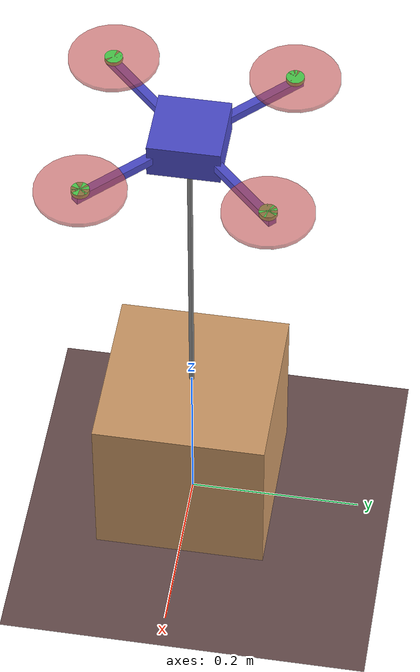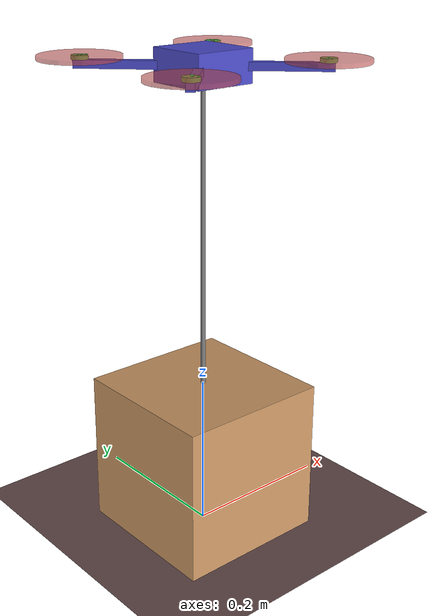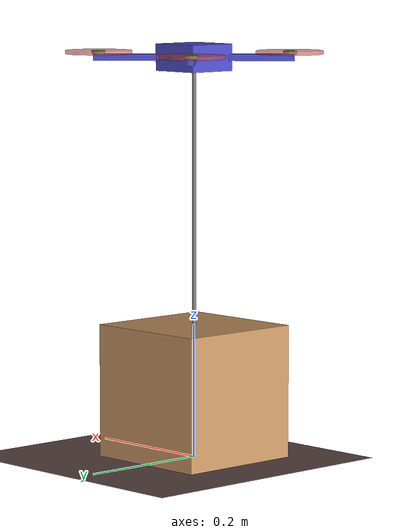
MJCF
<!--
Quadcopter with x configuration.
Front: Along body X-axis
-->

<!--
Adapted from https://github.com/adipandas/gym_multirotor/blob/main/gym_multirotor/envs/mujoco/assets/quadrotor_x.xml
-->

<mujoco model="quadrotor_x">
    <compiler angle="degree" inertiafromgeom="true" coordinate="local"/>
    <option	timestep="0.01" gravity="0 0 -9.81" density="1" viscosity="1e-5" />

    <extension>
        <plugin plugin="mujoco.elasticity.cable" />
    </extension>

    <asset>
        <texture builtin="gradient" type="skybox" height="100" width="100" rgb1="1 1 1" rgb2="0 0 0"/>
        <texture name="texgeom" builtin="flat" height="1278" mark="cross" markrgb="1 1 1" random="0.01" rgb1="0.8 0.6 0.4" rgb2="0.8 0.6 0.4" type="cube" width="127"/>
        <texture name="texplane" builtin="checker" height="100" width="100" rgb1="0 0 0" rgb2="0.8 0.8 0.8" type="2d"/>
        <material name="MatPlane" reflectance="0.5" shininess="1" specular="1" texrepeat="60 60" texture="texplane"/>
        <material name="geom" texture="texgeom" texuniform="true"/>
    </asset>

    <worldbody>
        <light cutoff="100" diffuse="1 1 1" dir="-0 0 -1.3" directional="true" exponent="1" pos="0 0 1.3" specular=".1 .1 .1"/>
        <geom conaffinity="1" condim="3" material="MatPlane" name="floor" pos="0 0 0" rgba="0.4 0.3 0.3 1" size="5 5 0.2" type="plane"/>

        <!-- UAV -->
        <body name="core" pos="0 0 0.6">
            <joint name="root" type="free" damping="0" armature="0" pos="0 0 0" limited="false"/>
            <camera name="track" mode="trackcom" pos="0 -3 1.0" xyaxes="1 0 0 0 0 1"/>

            <site name="bottom_tether" pos="0 0 0" />

            <geom name="core_geom" type="box" pos="0 0 0" quat="1 0 0 0" size=".04 .04 .02" rgba=".3 .3 .8 1" mass=".1"/>

            <geom name="arm_front_left" type="box" pos=".07 .07 0" size=".05 .005 .005" quat=".924 0 0 .383" rgba=".3 .3 .8 1" mass=".025"/>
            <geom name="arm_front_right" type="box" pos=".07 -.07 0" size=".05 .005 .005" quat=".383 0 0 .924" rgba=".3 .3 .8 1" mass=".025"/>
            <geom name="arm_back_right" type="box" pos="-.07 -.07 0" size=".05 .005 .005" quat="-.383 0 0 .924" rgba=".3 .3 .8 1" mass=".025"/>
            <geom name="arm_back_left" type="box" pos="-.07 .07 0" size=".05 .005 .005" quat=".924 0 0 -.383" rgba=".3 .3 .8 1" mass=".025"/>

            <site name="motor_front_left" type="cylinder" pos=".1 .1 .0075" size=".01 .0025" quat="1 0 0 0" rgba=".3 .8 .3 1"/>
            <site name="motor_front_right" type="cylinder" pos=".1 -.1 .0075" size=".01 .0025" quat="1 0 0 0" rgba=".3 .8 .3 1"/>
            <site name="motor_back_right" type="cylinder" pos="-.1 -.1 .0075" size=".01 .0025" quat="1 0 0 0" rgba=".3 .8 .3 1"/>
            <site name="motor_back_left" type="cylinder" pos="-.1  .1 .0075" size=".01 .0025" quat="1 0 0 0" rgba=".3 .8 .3 1"/>

            <geom name="thruster_front_left" type="cylinder" pos=".1 .1 .0075" size=".05 .0025" quat="1 0 0 0" rgba=".8 .3 .3 0.6" mass=".025"/>
            <geom name="thruster_front_right" type="cylinder" pos=".1 -.1 .0075" size=".05 .0025" quat="1 0 0 0" rgba=".8 .3 .3 0.6" mass=".025"/>
            <geom name="thruster_back_right" type="cylinder" pos="-.1 -.1 .0075" size=".05 .0025" quat="1 0 0 0" rgba=".8 .3 .3 0.6" mass=".025"/>
            <geom name="thruster_back_left" type="cylinder" pos="-.1 .1 .0075" size=".05 .0025" quat="1 0 0 0" rgba=".8 .3 .3 0.6" mass=".025"/>

        </body>

        <!-- Payload box -->
        <body name="payload" pos="0 0 0.1">
            <joint type="free" />
            <site name="top_tether_connection" />
            <site name="box_center" pos="0 0 0" />
            <site name="contact" pos="0 0 0" size=".15 .15 .15" type="box" rgba="0 0 0 0" />
            <geom conaffinity="1" type="box" size=".1 .1 .1" rgba="0.8 0.6 0.4 1" mass="0.2"/>
        </body>

        <!-- Target destination -->
        <body name="destination" pos="2.0 0 0">
            <geom conaffinity="1" condim="3" name="target_dest" pos="0 0 0" rgba="0 1 0 1" size="0.3 0.3 0.2" type="plane"/>
        </body>

    </worldbody>

    <tendon>
        <spatial name="elastic_cable" limited="true" range="0.5 1.5">
            <site site="top_tether_connection" />
            <site site="bottom_tether" />
        </spatial>
    </tendon>

    <actuator>
        <motor ctrllimited="true" ctrlrange="0 1.5" gear="0 0 1 0 0 .1" site="motor_back_left" name="actuator_back_left" />
        <motor ctrllimited="true" ctrlrange="0 1.5" gear="0 0 1 0 0 -.1" site="motor_back_right" name="actuator_back_right"/>
        <motor ctrllimited="true" ctrlrange="0 1.5" gear="0 0 1 0 0 .1" site="motor_front_right" name="actuator_front_right"/>
        <motor ctrllimited="true" ctrlrange="0 1.5" gear="0 0 1 0 0 -.1" site="motor_front_left" name="actuator_front_left"/>
    </actuator>

    <sensor>
        <!-- quadrotor sensors -->
        <framepos objtype="site" objname="bottom_tether" />
        <framelinvel objtype="site" objname="bottom_tether" />
        <frameangvel objtype="site" objname="bottom_tether" />

        <!-- Payload sensors -->
        <framepos objtype="site" objname="box_center" />
        <framelinvel objtype="site" objname="box_center" />
        <frameangvel objtype="site" objname="box_center" />

        <touch site="contact" />
    </sensor>

</mujoco>
